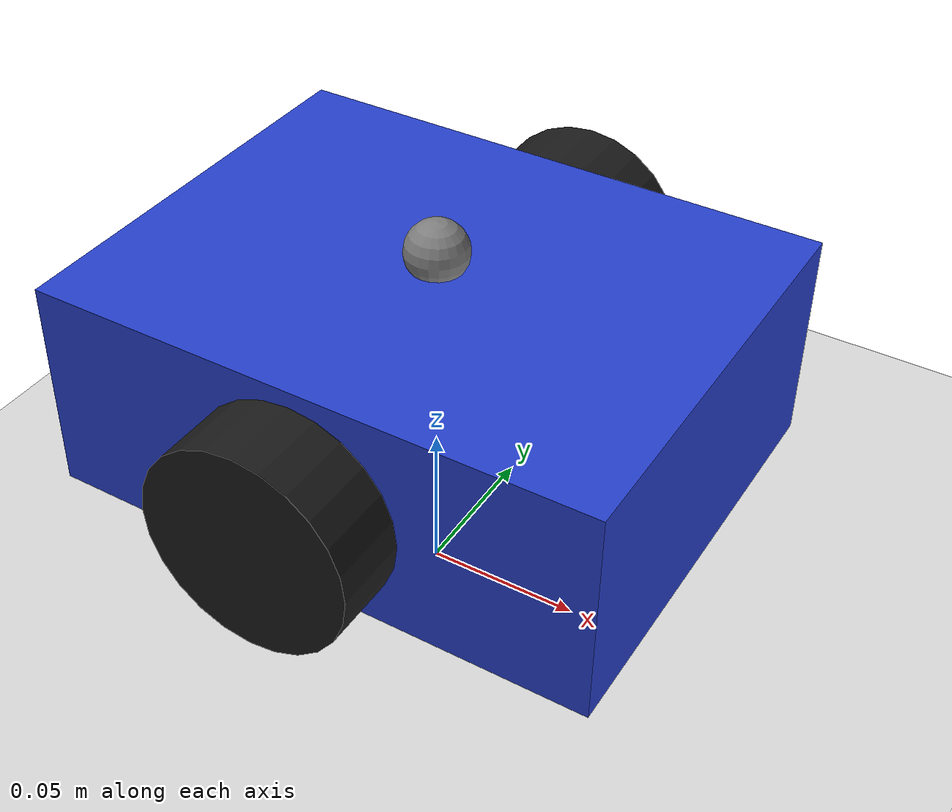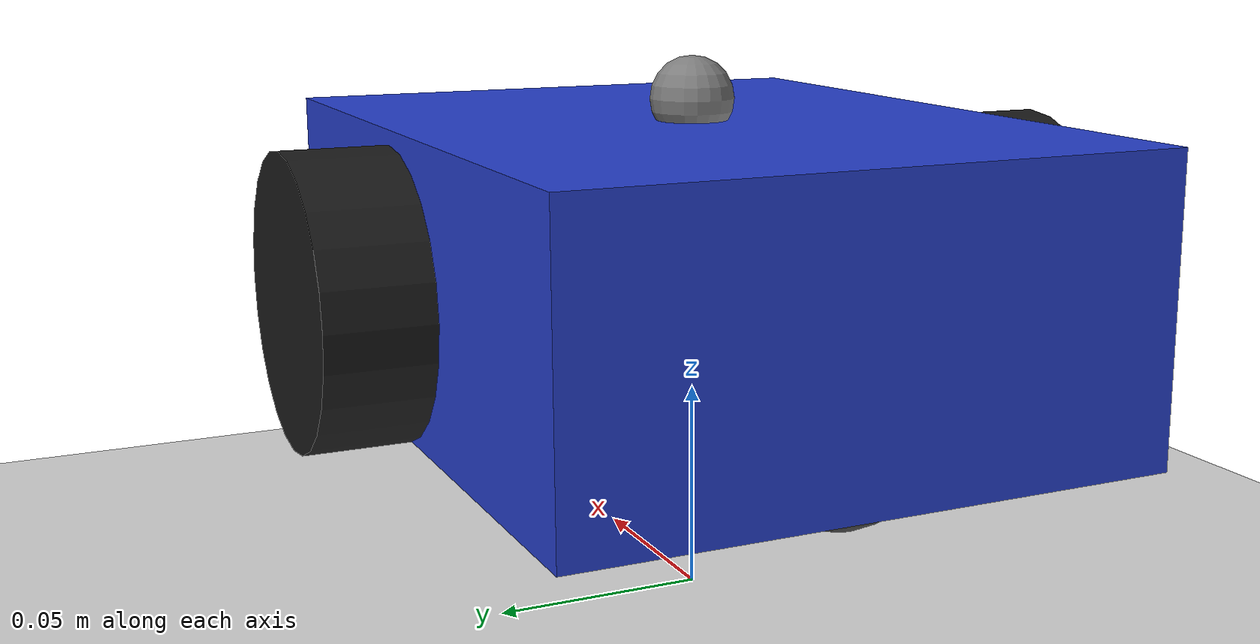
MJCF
<mujoco model="tb3_burger_training">
  <compiler angle="radian" meshdir="."/>
  <option timestep="0.01" gravity="0 0 -9.81"/>
  <default>
    <geom friction="0.8 0.1 0.1"/>
    <joint damping="0.01"/>
  </default>
  <worldbody>
    <light pos="0 0 3"/>
    <geom name="floor" type="plane" size="5 5 0.1" rgba="0.85 0.85 0.85 1"/>
    <body name="base_link" pos="0 0 0.08">
      <freejoint name="base_freejoint"/>
      <geom name="base_geom" type="box" size="0.09 0.07 0.035" mass="1.0" rgba="0.15 0.25 0.8 1"/>
      <site name="imu_site" pos="0 0 0.04" size="0.01"/>
      <body name="left_wheel_link" pos="0 0.085 0">
        <joint name="left_wheel_joint" type="hinge" axis="0 1 0"/>
        <geom name="left_wheel_geom" type="cylinder" size="0.033 0.012" euler="1.5708 0 0" mass="0.12" rgba="0.1 0.1 0.1 1"/>
      </body>
      <body name="right_wheel_link" pos="0 -0.085 0">
        <joint name="right_wheel_joint" type="hinge" axis="0 1 0"/>
        <geom name="right_wheel_geom" type="cylinder" size="0.033 0.012" euler="1.5708 0 0" mass="0.12" rgba="0.1 0.1 0.1 1"/>
      </body>
      <body name="caster_link" pos="-0.07 0 -0.025">
        <geom type="sphere" size="0.018" mass="0.03" rgba="0.25 0.25 0.25 1"/>
      </body>
    </body>
  </worldbody>
  <actuator>
    <velocity name="left_wheel_motor" joint="left_wheel_joint" kv="1" ctrlrange="-20 20"/>
    <velocity name="right_wheel_motor" joint="right_wheel_joint" kv="1" ctrlrange="-20 20"/>
  </actuator>
  <sensor>
    <jointpos name="left_wheel_pos" joint="left_wheel_joint"/>
    <jointpos name="right_wheel_pos" joint="right_wheel_joint"/>
    <jointvel name="left_wheel_vel" joint="left_wheel_joint"/>
    <jointvel name="right_wheel_vel" joint="right_wheel_joint"/>
    <accelerometer name="imu_accel" site="imu_site"/>
    <gyro name="imu_gyro" site="imu_site"/>
    <framepos name="base_position" objtype="body" objname="base_link"/>
    <framequat name="base_orientation" objtype="body" objname="base_link"/>
  </sensor>
</mujoco>
